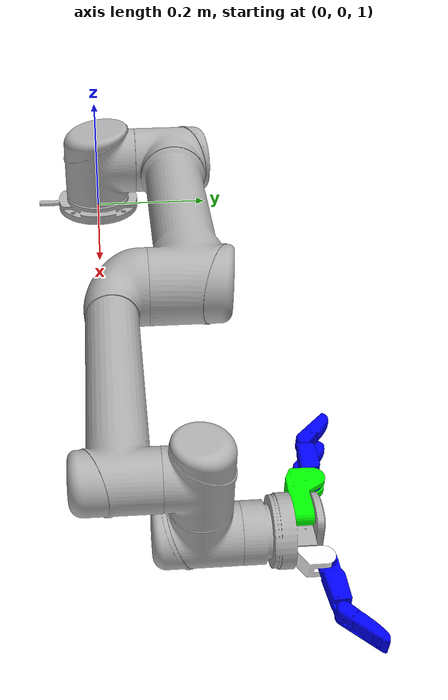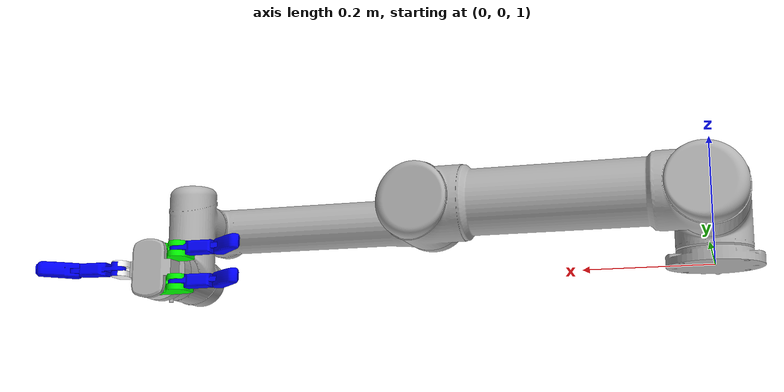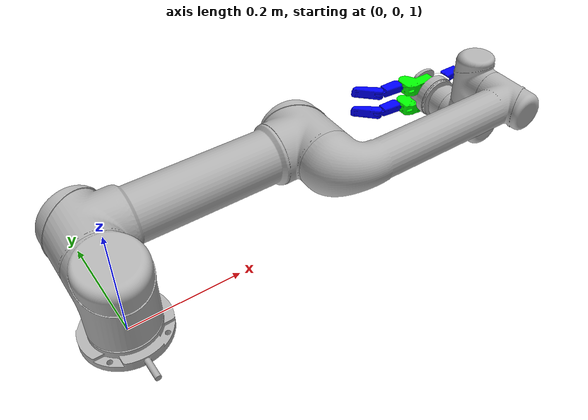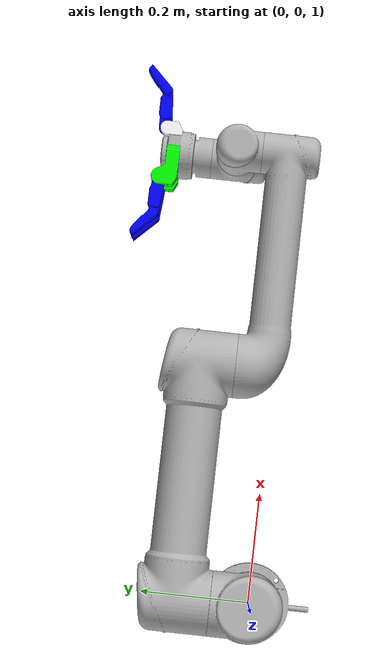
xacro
<?xml version="1.0"?>
<robot xmlns:xacro="http://www.ros.org/wiki/xacro" name="ur5bh" >

  <!-- common stuff -->
  <xacro:include filename="$(find ur_description)/urdf/common.gazebo.xacro" />

  <!-- ur5 -->
  <xacro:include filename="$(find ur_description)/urdf/ur5.urdf.xacro" />

  <!-- barrett hand -->
  <xacro:include filename="$(find bhand_description)/urdf/bh282.urdf.xacro" />

  <!-- arm -->
  <xacro:ur5_robot prefix="" joint_limited="true"/>

  <link name="world" />

  <joint name="world_joint" type="fixed">
    <parent link="world" />
    <child link = "base_link" />
    <origin xyz="0.0 0.0 1.0" rpy="0.0 0.0 0.0" />
  </joint>

  <!-- end effector -->
  <xacro:bhand_macro parent="ee_link" name="bh">
    <origin xyz="0.012 0.0 0.0" rpy="${pi/2.0} ${pi/2.0} ${pi/2.0}"/>
  </xacro:bhand_macro>
</robot>

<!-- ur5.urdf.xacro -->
<robot xmlns:xacro="http://wiki.ros.org/xacro">

  <xacro:include filename="$(find ur_description)/urdf/ur.transmission.xacro" />
  <xacro:include filename="$(find ur_description)/urdf/ur.gazebo.xacro" />

  <xacro:macro name="cylinder_inertial" params="radius length mass *origin">
    <inertial>
      <mass value="${mass}" />
      <xacro:insert_block name="origin" />
      <inertia ixx="${0.0833333 * mass * (3 * radius * radius + length * length)}" ixy="0.0" ixz="0.0"
        iyy="${0.0833333 * mass * (3 * radius * radius + length * length)}" iyz="0.0"
        izz="${0.5 * mass * radius * radius}" />
    </inertial>
  </xacro:macro>

  <xacro:macro name="ur5_robot" params="prefix joint_limited
    shoulder_pan_lower_limit:=${-pi}    shoulder_pan_upper_limit:=${pi}
    shoulder_lift_lower_limit:=${-pi}    shoulder_lift_upper_limit:=${pi}
    elbow_joint_lower_limit:=${-pi}    elbow_joint_upper_limit:=${pi}
    wrist_1_lower_limit:=${-pi}    wrist_1_upper_limit:=${pi}
    wrist_2_lower_limit:=${-pi}    wrist_2_upper_limit:=${pi}
    wrist_3_lower_limit:=${-pi}    wrist_3_upper_limit:=${pi}
    transmission_hw_interface:=hardware_interface/PositionJointInterface
    safety_limits:=false safety_pos_margin:=0.15
    safety_k_position:=20">

    <!-- Inertia parameters -->
    <xacro:property name="base_mass" value="4.0" />  <!-- This mass might be incorrect -->
    <xacro:property name="shoulder_mass" value="3.7000" />
    <xacro:property name="upper_arm_mass" value="8.3930" />
    <xacro:property name="forearm_mass" value="2.2750" />
    <xacro:property name="wrist_1_mass" value="1.2190" />
    <xacro:property name="wrist_2_mass" value="1.2190" />
    <xacro:property name="wrist_3_mass" value="0.1879" />

    <xacro:property name="shoulder_cog" value="0.0 0.00193 -0.02561" />
    <xacro:property name="upper_arm_cog" value="0.0 -0.024201 0.2125" />
    <xacro:property name="forearm_cog" value="0.0 0.0265 0.11993" />
    <xacro:property name="wrist_1_cog" value="0.0 0.110949 0.01634" />
    <xacro:property name="wrist_2_cog" value="0.0 0.0018 0.11099" />
    <xacro:property name="wrist_3_cog" value="0.0 0.001159 0.0" />

    <!-- Kinematic model -->
    <!-- Properties from urcontrol.conf -->
    <xacro:property name="d1" value="0.089159" />
    <xacro:property name="a2" value="-0.42500" />
    <xacro:property name="a3" value="-0.39225" />
    <xacro:property name="d4" value="0.10915" />
    <xacro:property name="d5" value="0.09465" />
    <xacro:property name="d6" value="0.0823" />

    <!-- Arbitrary offsets for shoulder/elbow joints -->
    <xacro:property name="shoulder_offset" value="0.13585" />  <!-- measured from model -->
    <xacro:property name="elbow_offset" value="-0.1197" /> <!-- measured from model -->

    <!-- link lengths used in model -->
    <xacro:property name="shoulder_height" value="${d1}" />
    <xacro:property name="upper_arm_length" value="${-a2}" />
    <xacro:property name="forearm_length" value="${-a3}" />
    <xacro:property name="wrist_1_length" value="${d4 - elbow_offset - shoulder_offset}" />
    <xacro:property name="wrist_2_length" value="${d5}" />
    <xacro:property name="wrist_3_length" value="${d6}" />
    <!--property name="shoulder_height" value="0.089159" /-->
    <!--property name="shoulder_offset" value="0.13585" /-->  <!-- shoulder_offset - elbow_offset + wrist_1_length = 0.10915 -->
    <!--property name="upper_arm_length" value="0.42500" /-->
    <!--property name="elbow_offset" value="0.1197" /-->       <!-- CAD measured -->
    <!--property name="forearm_length" value="0.39225" /-->
    <!--property name="wrist_1_length" value="0.093" /-->     <!-- CAD measured -->
    <!--property name="wrist_2_length" value="0.09465" /-->   <!-- In CAD this distance is 0.930, but in the spec it is 0.09465 -->
    <!--property name="wrist_3_length" value="0.0823" /-->

    <xacro:property name="shoulder_radius" value="0.060" />   <!-- manually measured -->
    <xacro:property name="upper_arm_radius" value="0.054" />  <!-- manually measured -->
    <xacro:property name="elbow_radius" value="0.060" />      <!-- manually measured -->
    <xacro:property name="forearm_radius" value="0.040" />    <!-- manually measured -->
    <xacro:property name="wrist_radius" value="0.045" />      <!-- manually measured -->

    <link name="${prefix}base_link" >
      <visual>
        <geometry>
          <mesh filename="package://ur_description/meshes/ur5/visual/base.dae" />
        </geometry>
        <material name="LightGrey">
          <color rgba="0.7 0.7 0.7 1.0"/>
        </material>
      </visual>
      <collision>
        <geometry>
          <mesh filename="package://ur_description/meshes/ur5/collision/base.stl" />
        </geometry>
      </collision>
      <xacro:cylinder_inertial radius="0.06" length="0.05" mass="${base_mass}">
        <origin xyz="0.0 0.0 0.0" rpy="0 0 0" />
      </xacro:cylinder_inertial>
    </link>

    <joint name="${prefix}shoulder_pan_joint" type="revolute">
      <parent link="${prefix}base_link" />
      <child link = "${prefix}shoulder_link" />
      <origin xyz="0.0 0.0 ${shoulder_height}" rpy="0.0 0.0 0.0" />
      <axis xyz="0 0 1" />
      <xacro:unless value="${joint_limited}">
        <limit lower="${-2.0 * pi}" upper="${2.0 * pi}" effort="150.0" velocity="3.15"/>
        <xacro:if value="${safety_limits}">
          <safety_controller soft_lower_limit="${-2.0 * pi + safety_pos_margin}" soft_upper_limit="${2.0 * pi - safety_pos_margin}" k_position="${safety_k_position}" k_velocity="0.0"/>
        </xacro:if>
      </xacro:unless>
      <xacro:if value="${joint_limited}">
        <limit lower="${shoulder_pan_lower_limit}" upper="${shoulder_pan_upper_limit}" effort="150.0" velocity="3.15"/>
        <xacro:if value="${safety_limits}">
          <safety_controller soft_lower_limit="${shoulder_pan_lower_limit + safety_pos_margin}" soft_upper_limit="${shoulder_pan_upper_limit - safety_pos_margin}" k_position="${safety_k_position}" k_velocity="0.0"/>
        </xacro:if>
      </xacro:if>
    </joint>

    <link name="${prefix}shoulder_link">
      <visual>
        <geometry>
          <mesh filename="package://ur_description/meshes/ur5/visual/shoulder.dae" />
        </geometry>
        <material name="LightGrey">
          <color rgba="0.7 0.7 0.7 1.0"/>
        </material>
      </visual>
      <collision>
        <geometry>
          <mesh filename="package://ur_description/meshes/ur5/collision/shoulder.stl" />
        </geometry>
      </collision>
      <xacro:cylinder_inertial radius="0.06" length="0.15" mass="${shoulder_mass}">
        <origin xyz="0.0 0.0 0.0" rpy="0 0 0" />
      </xacro:cylinder_inertial>
    </link>

    <joint name="${prefix}shoulder_lift_joint" type="revolute">
      <parent link="${prefix}shoulder_link" />
      <child link = "${prefix}upper_arm_link" />
      <origin xyz="0.0 ${shoulder_offset} 0.0" rpy="0.0 ${pi / 2.0} 0.0" />
      <axis xyz="0 1 0" />
      <xacro:unless value="${joint_limited}">
        <limit lower="${-2.0 * pi}" upper="${2.0 * pi}" effort="150.0" velocity="3.15"/>
        <xacro:if value="${safety_limits}">
          <safety_controller soft_lower_limit="${-2.0 * pi + safety_pos_margin}" soft_upper_limit="${2.0 * pi - safety_pos_margin}" k_position="${safety_k_position}" k_velocity="0.0"/>
        </xacro:if>
      </xacro:unless>
      <xacro:if value="${joint_limited}">
        <limit lower="${shoulder_lift_lower_limit}" upper="${shoulder_lift_upper_limit}" effort="150.0" velocity="3.15"/>
        <xacro:if value="${safety_limits}">
          <safety_controller soft_lower_limit="${shoulder_lift_lower_limit + safety_pos_margin}" soft_upper_limit="${shoulder_lift_upper_limit - safety_pos_margin}" k_position="${safety_k_position}" k_velocity="0.0"/>
        </xacro:if>
      </xacro:if>
    </joint>

    <link name="${prefix}upper_arm_link">
      <visual>
        <geometry>
          <mesh filename="package://ur_description/meshes/ur5/visual/upperarm.dae" />
        </geometry>
        <material name="LightGrey">
          <color rgba="0.7 0.7 0.7 1.0"/>
        </material>
      </visual>
      <collision>
        <geometry>
          <mesh filename="package://ur_description/meshes/ur5/collision/upperarm.stl" />
        </geometry>
      </collision>
      <xacro:cylinder_inertial radius="0.06" length="0.56" mass="${upper_arm_mass}">
        <origin xyz="0.0 0.0 0.28" rpy="0 0 0" />
      </xacro:cylinder_inertial>
    </link>

    <joint name="${prefix}elbow_joint" type="revolute">
      <parent link="${prefix}upper_arm_link" />
      <child link = "${prefix}forearm_link" />
      <origin xyz="0.0 ${elbow_offset} ${upper_arm_length}" rpy="0.0 0.0 0.0" />
      <axis xyz="0 1 0" />
      <xacro:unless value="${joint_limited}">
        <limit lower="${-pi}" upper="${pi}" effort="150.0" velocity="3.15"/>
        <xacro:if value="${safety_limits}">
          <safety_controller soft_lower_limit="${-2.0 * pi + safety_pos_margin}" soft_upper_limit="${2.0 * pi - safety_pos_margin}" k_position="${safety_k_position}" k_velocity="0.0"/>
        </xacro:if>
      </xacro:unless>
      <xacro:if value="${joint_limited}">
        <limit lower="${elbow_joint_lower_limit}" upper="${elbow_joint_upper_limit}" effort="150.0" velocity="3.15"/>
        <xacro:if value="${safety_limits}">
          <safety_controller soft_lower_limit="${elbow_joint_lower_limit + safety_pos_margin}" soft_upper_limit="${elbow_joint_upper_limit - safety_pos_margin}" k_position="${safety_k_position}" k_velocity="0.0"/>
        </xacro:if>
      </xacro:if>
    </joint>

    <link name="${prefix}forearm_link">
      <visual>
        <geometry>
          <mesh filename="package://ur_description/meshes/ur5/visual/forearm.dae" />
        </geometry>
        <material name="LightGrey">
          <color rgba="0.7 0.7 0.7 1.0"/>
        </material>
      </visual>
      <collision>
        <geometry>
          <mesh filename="package://ur_description/meshes/ur5/collision/forearm.stl" />
        </geometry>
      </collision>
      <xacro:cylinder_inertial radius="0.06" length="${-a3}" mass="${forearm_mass}">
        <origin xyz="0.0 0.0 ${-a3/2}" rpy="0 0 0" />
      </xacro:cylinder_inertial>
    </link>

    <joint name="${prefix}wrist_1_joint" type="revolute">
      <parent link="${prefix}forearm_link" />
      <child link = "${prefix}wrist_1_link" />
      <origin xyz="0.0 0.0 ${forearm_length}" rpy="0.0 ${pi / 2.0} 0.0" />
      <axis xyz="0 1 0" />
      <xacro:unless value="${joint_limited}">
        <limit lower="${-2.0 * pi}" upper="${2.0 * pi}" effort="28.0" velocity="3.2"/>
        <xacro:if value="${safety_limits}">
          <safety_controller soft_lower_limit="${-2.0 * pi + safety_pos_margin}" soft_upper_limit="${2.0 * pi - safety_pos_margin}" k_position="${safety_k_position}" k_velocity="0.0"/>
        </xacro:if>
      </xacro:unless>
      <xacro:if value="${joint_limited}">
        <limit lower="${wrist_1_lower_limit}" upper="${wrist_1_upper_limit}" effort="28.0" velocity="3.2"/>
        <xacro:if value="${safety_limits}">
          <safety_controller soft_lower_limit="${wrist_1_lower_limit + safety_pos_margin}" soft_upper_limit="${wrist_1_upper_limit - safety_pos_margin}" k_position="${safety_k_position}" k_velocity="0.0"/>
        </xacro:if>
      </xacro:if>
    </joint>

    <link name="${prefix}wrist_1_link">
      <visual>
        <geometry>
          <mesh filename="package://ur_description/meshes/ur5/visual/wrist1.dae" />
        </geometry>
        <material name="LightGrey">
          <color rgba="0.7 0.7 0.7 1.0"/>
        </material>
      </visual>
      <collision>
        <geometry>
          <mesh filename="package://ur_description/meshes/ur5/collision/wrist1.stl" />
        </geometry>
      </collision>
      <xacro:cylinder_inertial radius="0.06" length="0.12" mass="${wrist_1_mass}">
        <origin xyz="0.0 ${wrist_1_length} 0.0" rpy="0 0 0" />
      </xacro:cylinder_inertial>
    </link>

    <joint name="${prefix}wrist_2_joint" type="revolute">
      <parent link="${prefix}wrist_1_link" />
      <child link = "${prefix}wrist_2_link" />
      <origin xyz="0.0 ${wrist_1_length} 0.0" rpy="0.0 0.0 0.0" />
      <axis xyz="0 0 1" />
      <xacro:unless value="${joint_limited}">
        <limit lower="${-2.0 * pi}" upper="${2.0 * pi}" effort="28.0" velocity="3.2"/>
        <xacro:if value="${safety_limits}">
          <safety_controller soft_lower_limit="${-2.0 * pi + safety_pos_margin}" soft_upper_limit="${2.0 * pi - safety_pos_margin}" k_position="${safety_k_position}" k_velocity="0.0"/>
        </xacro:if>
      </xacro:unless>
      <xacro:if value="${joint_limited}">
        <limit lower="${wrist_2_lower_limit}" upper="${wrist_2_upper_limit}" effort="28.0" velocity="3.2"/>
        <xacro:if value="${safety_limits}">
          <safety_controller soft_lower_limit="${wrist_2_lower_limit + safety_pos_margin}" soft_upper_limit="${wrist_2_upper_limit - safety_pos_margin}" k_position="${safety_k_position}" k_velocity="0.0"/>
        </xacro:if>
      </xacro:if>
    </joint>

    <link name="${prefix}wrist_2_link">
      <visual>
        <geometry>
          <mesh filename="package://ur_description/meshes/ur5/visual/wrist2.dae" />
        </geometry>
        <material name="LightGrey">
          <color rgba="0.7 0.7 0.7 1.0"/>
        </material>
      </visual>
      <collision>
        <geometry>
          <mesh filename="package://ur_description/meshes/ur5/collision/wrist2.stl" />
        </geometry>
      </collision>
      <xacro:cylinder_inertial radius="0.06" length="0.12" mass="${wrist_2_mass}">
        <origin xyz="0.0 0.0 ${wrist_2_length}" rpy="0 0 0" />
      </xacro:cylinder_inertial>
    </link>

    <joint name="${prefix}wrist_3_joint" type="revolute">
      <parent link="${prefix}wrist_2_link" />
      <child link = "${prefix}wrist_3_link" />
      <origin xyz="0.0 0.0 ${wrist_2_length}" rpy="0.0 0.0 0.0" />
      <axis xyz="0 1 0" />
      <xacro:unless value="${joint_limited}">
        <limit lower="${-2.0 * pi}" upper="${2.0 * pi}" effort="28.0" velocity="3.2"/>
        <xacro:if value="${safety_limits}">
          <safety_controller soft_lower_limit="${-2.0 * pi + safety_pos_margin}" soft_upper_limit="${2.0 * pi - safety_pos_margin}" k_position="${safety_k_position}" k_velocity="0.0"/>
        </xacro:if>
      </xacro:unless>
      <xacro:if value="${joint_limited}">
        <limit lower="${wrist_3_lower_limit}" upper="${wrist_3_upper_limit}" effort="28.0" velocity="3.2"/>
        <xacro:if value="${safety_limits}">
          <safety_controller soft_lower_limit="${wrist_3_lower_limit + safety_pos_margin}" soft_upper_limit="${wrist_3_upper_limit - safety_pos_margin}" k_position="${safety_k_position}" k_velocity="0.0"/>
        </xacro:if>
      </xacro:if>
    </joint>

    <link name="${prefix}wrist_3_link">
      <visual>
        <geometry>
          <mesh filename="package://ur_description/meshes/ur5/visual/wrist3.dae" />
        </geometry>
        <material name="LightGrey">
          <color rgba="0.7 0.7 0.7 1.0"/>
        </material>
      </visual>
      <collision>
        <geometry>
          <mesh filename="package://ur_description/meshes/ur5/collision/wrist3.stl" />
        </geometry>
      </collision>
      <xacro:cylinder_inertial radius="0.0375" length="0.0345" mass="${wrist_3_mass}">
        <origin xyz="0.0 ${wrist_3_length - 0.0345/2} 0.0" rpy="${pi/2} 0 0" />
      </xacro:cylinder_inertial>
    </link>

    <joint name="${prefix}ee_fixed_joint" type="fixed">
      <parent link="${prefix}wrist_3_link" />
      <child link = "${prefix}ee_link" />
      <origin xyz="0.0 ${wrist_3_length} 0.0" rpy="0.0 0.0 ${pi/2.0}" />
    </joint>

    <link name="${prefix}ee_link">
      <collision>
        <geometry>
          <box size="0.01 0.01 0.01"/>
        </geometry>
        <origin rpy="0 0 0" xyz="-0.01 0 0"/>
      </collision>
    </link>

    <xacro:ur_arm_transmission prefix="${prefix}" hw_interface="${transmission_hw_interface}" />
    <xacro:ur_arm_gazebo prefix="${prefix}" />

    <!-- ROS base_link to UR 'Base' Coordinates transform -->
    <link name="${prefix}base"/>
    <joint name="${prefix}base_link-base_fixed_joint" type="fixed">
      <!-- NOTE: this rotation is only needed as long as base_link itself is
                 not corrected wrt the real robot (ie: rotated over 180
                 degrees)
      -->
      <origin xyz="0 0 0" rpy="0 0 ${-pi}"/>
      <parent link="${prefix}base_link"/>
      <child link="${prefix}base"/>
    </joint>

    <!-- Frame coincident with all-zeros TCP on UR controller -->
    <link name="${prefix}tool0"/>
    <joint name="${prefix}wrist_3_link-tool0_fixed_joint" type="fixed">
      <origin xyz="0 ${wrist_3_length} 0" rpy="${pi/-2.0} 0 0"/>
      <parent link="${prefix}wrist_3_link"/>
      <child link="${prefix}tool0"/>
    </joint>

  </xacro:macro>
</robot>

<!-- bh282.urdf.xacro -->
<robot xmlns:xacro="http://www.ros.org/wiki/xacro">

	<!-- Import all Gazebo-customization elements, including Gazebo colors -->
	<xacro:include filename="$(find bhand_description)/urdf/bh282.gazebo" />

	<!-- Constants for robot dimensions -->
	<xacro:property name="PI" value="3.1415926535897931"/>
	<xacro:property name="PI_2" value="1.570796327"/>
	<xacro:property name="joint_damping" value="100.0" />
	<xacro:property name="joint_friction" value="1.0" />
	<xacro:property name="joint_effort_limit" value="30.0" />
	<xacro:property name="joint_velocity_limit" value="2.0" />
	<xacro:property name="mechanical_reduction" value="1.0" />

	<xacro:macro name="bhand_macro" params="parent name *origin
	transmission_hw_interface:=hardware_interface/PositionJointInterface">

		<joint name="${name}_base_joint" type="fixed">
			<origin xyz="0.0 0.0 0.0" rpy="0.0 1.57079632679 0"/>
			<insert_block name="origin"/>
			<parent link="${parent}"/>
			<child link="${name}_base_link"/>
		</joint>

		<!-- HAND BASE_LINK (RED) -->
		<link name="${name}_base_link">
			<inertial>
			  <mass value="1.0" />
			  <origin xyz="0 0 0" />
			  <inertia  ixx="1.0" ixy="0.0"  ixz="0.0"  iyy="1.0"  iyz="0.0"  izz="1.0" />
			</inertial>
			<visual>
			   <origin xyz="0 0 0" rpy="0 0 0" />
			   <geometry>
				  <mesh filename="package://bhand_description/meshes/palm_282.dae"/>
			   </geometry>
			   <material name="Grey">
			   	<color rgba="0.7 0.7 0.7 1.0"/>
			   </material>
			</visual>
			<collision>
			   <origin xyz="0 0 0" rpy="0 0 0 " />
			   <geometry>
				  <mesh filename="package://bhand_description/meshes/palm_282.dae"/>
			   </geometry>
			   <contact_coefficients kd="1.0" kp="1000.0" mu="0"/>
			</collision>
		</link>

		<!-- joint between BH_finger_32_link and BH_finger_33_link -->
		<joint name="${name}_j33_joint" type="revolute">
			<parent link="${name}_finger_32_link"/>
			<child link="${name}_finger_33_link"/>
			<origin xyz="-0.069936 0.003 0" rpy="0 0 0" />
			<axis xyz="0 0 -1"/>
			<limit effort="${joint_effort_limit}" lower="0.0" upper="0.84" velocity="${joint_velocity_limit}"/>
			<dynamics damping="${joint_damping}" friction="${joint_friction}"/>
		</joint>

		<link name="${name}_finger_11_link">
			<inertial>
			  <mass value="0.1"/>
			  <origin xyz="-0.046 0 0" rpy="0 0 0"/>
			  <inertia ixx="0.01" ixy="0" ixz="0" iyy="0.01" iyz="0" izz="0.01" />
			</inertial>
			<visual>
			  <origin xyz="0 0 0" rpy="0 0 0" />
			  <geometry>
				 <mesh filename="package://bhand_description/meshes/knuckle.dae" />
			  </geometry>
			  <material name="Green" >
			  	<color rgba="0.0 1.0 0.0 1.0"/>
			  </material>
			</visual>
			<collision>
			  <origin xyz="0 0 0" rpy="0 0 0" />
			  <geometry>
				<mesh filename="package://bhand_description/meshes/knuckle.dae" />
			  </geometry>
			</collision>
		</link>

		<!-- joint between BH_palm_link and BH_finger_11_link -->
		<joint name="${name}_j11_joint" type="revolute">
			<parent link="${name}_base_link"/>
			<child link="${name}_finger_11_link"/>
			<origin xyz="-0.025 0 0.0252" rpy="0 0 1.5708" />
			<axis xyz="0 0 -1"/>
			<limit effort="${joint_effort_limit}" lower="0" upper="3.1416" velocity="${joint_velocity_limit}"/>
			<dynamics damping="${joint_damping}" friction="${joint_friction}"/>
		</joint>

		<link name="${name}_finger_12_link">
			 <inertial>
				<mass value="0.1"/>
				<origin xyz="0 0 0" rpy="0 0 0"/>
				<inertia ixx="0.01" ixy="0" ixz="0" iyy="0.01" iyz="0" izz="0.01" />
			 </inertial>
			 <visual>
				<origin xyz="0 0 0" rpy="0 0 0" />
				<geometry>
				  <mesh filename="package://bhand_description/meshes/finger.dae" />
				</geometry>
				<material name="Blue" >
					<color rgba="0.0 0.0 1.0 1.0"/>
				</material>
			 </visual>
			 <collision>
				<origin xyz="0 0 0" rpy="0 0 0" />
				<geometry>
				  <mesh filename="package://bhand_description/meshes/finger.dae" />
				</geometry>
				<contact_coefficients kd="1.0" kp="1000.0" mu="0"/>
			 </collision>
		</link>

		<!-- joint between BH_finger_11_link and BH_finger_12_link -->
		<joint name="${name}_j12_joint" type="revolute">
			<parent link="${name}_finger_11_link"/>
			<child link="${name}_finger_12_link"/>
			<origin	xyz="-0.05 0 0.0339"
				rpy="1.5708 0 0" />
			<axis xyz="0 0 -1"/>
			<limit effort="${joint_effort_limit}" lower="0.0" upper="2.44" velocity="${joint_velocity_limit}"/>
			<dynamics damping="${joint_damping}" friction="${joint_friction}"/>
		</joint>

		<link name="${name}_finger_13_link">
		 <inertial>
			<mass value="0.1"/>
			<origin xyz="0 0 0" rpy="0 0 0"/>
			<inertia ixx="0.01" ixy="0" ixz="0" iyy="0.01" iyz="0" izz="0.01" />
		 </inertial>
		 <visual>
			<origin xyz="0 0 0" rpy="0 0 0" />
			<geometry>
			  <mesh filename="package://bhand_description/meshes/finger_tip.dae" />
			</geometry>
			<material name="Blue" />
		 </visual>
		 <collision>
			<origin xyz="0 0 0" rpy="0 0 0" />
			<geometry>
			  <mesh filename="package://bhand_description/meshes/finger_tip.dae" />
			</geometry>
			<contact_coefficients kd="1.0" kp="1000.0" mu="0"/>
		 </collision>
		</link>

		<!-- joint between BH_finger_12_link and BH_finger_13_link -->
		<joint name="${name}_j13_joint" type="revolute">
			<parent link="${name}_finger_12_link"/>
			<child link="${name}_finger_13_link"/>
			<origin xyz="-0.069936 0.003 0" rpy="0 0 0" />
			<axis xyz="0 0 -1"/>
			<limit effort="${joint_effort_limit}" lower="0.0" upper="0.84" velocity="${joint_velocity_limit}"/>
			<dynamics damping="${joint_damping}" friction="${joint_friction}"/>
		</joint>

		<!-- finger 2 -->
		<link name="${name}_finger_21_link">
			<inertial>
			  <mass value="0.1"/>
			  <origin xyz="-0.046 0 0" rpy="0 0 0"/>
			  <inertia ixx="0.01" ixy="0" ixz="0" iyy="0.01" iyz="0" izz="0.01" />
			</inertial>
			<visual>
			  <origin xyz="0 0 0" rpy="0 0 0" />
			  <geometry>
				 <mesh filename="package://bhand_description/meshes/knuckle.dae" />
			  </geometry>
			  <material name="Green" />
			</visual>
			<collision>
			  <origin xyz="0 0 0" rpy="0 0 0" />
			  <geometry>
				<mesh filename="package://bhand_description/meshes/knuckle.dae" />
			  </geometry>
			</collision>
		</link>

		<!-- joint between BH_palm_link and BH_finger_21_link -->
		<joint name="${name}_j21_joint" type="revolute">
			<parent link="${name}_base_link"/>
			<child link="${name}_finger_21_link"/>
			<origin xyz="0.025 0 0.0252" rpy="0 0 1.5708" />
			<axis xyz="0 0 1"/>
			<limit effort="${joint_effort_limit}" lower="0" upper="3.1416" velocity="${joint_velocity_limit}"/>
			<dynamics damping="${joint_damping}" friction="${joint_friction}"/>
		</joint>
		<link name="${name}_finger_22_link">
			 <inertial>
				<mass value="0.1"/>
				<origin xyz="0 0 0" rpy="0 0 0"/>
				<inertia ixx="0.01" ixy="0" ixz="0" iyy="0.01" iyz="0" izz="0.01" />
			 </inertial>
			 <visual>
				<origin xyz="0 0 0" rpy="0 0 0" />
				<geometry>
				  <mesh filename="package://bhand_description/meshes/finger.dae" />
				</geometry>
				<material name="Blue" />
			 </visual>
			 <collision>
				<origin xyz="0 0 0" rpy="0 0 0" />
				<geometry>
				  <mesh filename="package://bhand_description/meshes/finger.dae" />
				</geometry>
				<contact_coefficients kd="1.0" kp="1000.0" mu="0"/>
			 </collision>
		</link>
		<!-- joint between BH_finger_21_link and BH_finger_22_link -->
		<joint name="${name}_j22_joint" type="revolute">
			<parent link="${name}_finger_21_link"/>
			<child link="${name}_finger_22_link"/>
			<origin	xyz="-0.05 0 0.0339"
				rpy="1.5708 -8.8281E-17 0" />
			<axis xyz="0 0 -1"/>
			<limit effort="${joint_effort_limit}" lower="0.0" upper="2.44" velocity="${joint_velocity_limit}"/>
			<dynamics damping="${joint_damping}" friction="${joint_friction}"/>
		</joint>

		<link name="${name}_finger_23_link">
		 <inertial>
			<mass value="0.1"/>
			<origin xyz="0 0 0" rpy="0 0 0"/>
			<inertia ixx="0.01" ixy="0" ixz="0" iyy="0.01" iyz="0" izz="0.01" />
		 </inertial>
		 <visual>
			<origin xyz="0 0 0" rpy="0 0 0" />
			<geometry>
			  <mesh filename="package://bhand_description/meshes/finger_tip.dae" />
			</geometry>
			<material name="Blue" />
		 </visual>
		 <collision>
			<origin xyz="0 0 0" rpy="0 0 0" />
			<geometry>
			  <mesh filename="package://bhand_description/meshes/finger_tip.dae" />
			</geometry>
			<contact_coefficients kd="1.0" kp="1000.0" mu="0"/>
		 </collision>
		</link>
		<!-- joint between BH_finger_22_link and BH_finger_23_link -->
		<joint name="${name}_j23_joint" type="revolute">
			<parent link="${name}_finger_22_link"/>
			<child link="${name}_finger_23_link"/>
			<origin xyz="-0.069936 0.003 0" rpy="0 0 0" />
			<axis xyz="0 0 -1"/>
			<limit effort="${joint_effort_limit}" lower="0.0" upper="0.84" velocity="${joint_velocity_limit}"/>
			<dynamics damping="${joint_damping}" friction="${joint_friction}"/>
		</joint>

		<link name="${name}_finger_31_link">
		 <inertial>
		   <mass value="0.1"/>
		   <origin xyz="-0.046 0 0" rpy="0 0 0"/>
		   <inertia ixx="0.01" ixy="0" ixz="0" iyy="0.01" iyz="0" izz="0.01" />
		 </inertial>
		 <visual>
		   <origin xyz="-0.04 0 0" rpy="0 0 0" />
		   <geometry>
			  <mesh filename="package://bhand_description/meshes/knuckle_fixed.dae" />
		   </geometry>
			<material name="Black">
				<color rgba="1.0 1.0 1.0 1.0"/>
			</material>
		 </visual>
		 <collision>
		   <origin xyz="-0.04 0 0" rpy="0 0 0" />
		   <geometry>
			  <mesh filename="package://bhand_description/meshes/knuckle_fixed.dae"/>
		   </geometry>
		   <contact_coefficients kd="1.0" kp="1000.0" mu="0"/>
		  </collision>
		</link>
		<joint name="${name}_j31_joint" type="fixed">
			<parent link="${name}_base_link"/>
			<child link="${name}_finger_31_link"/>
			<origin xyz="0 0 0.0252" rpy="0 0 -${PI_2}"/>
		</joint>
		<link name="${name}_finger_32_link">
			 <inertial>
				<mass value="0.1"/>
				<origin xyz="0 0 0" rpy="0 0 0"/>
				<inertia ixx="0.01" ixy="0" ixz="0" iyy="0.01" iyz="0" izz="0.01" />
			 </inertial>
			 <visual>
				<origin xyz="0 0 0" rpy="0 0 0" />
				<geometry>
				  <mesh filename="package://bhand_description/meshes/finger.dae" />
				</geometry>
				<material name="Blue" />
			 </visual>
			 <collision>
				<origin xyz="0 0 0" rpy="0 0 0" />
				<geometry>
				  <mesh filename="package://bhand_description/meshes/finger.dae" />
				</geometry>
				<contact_coefficients kd="1.0" kp="1000.0" mu="0"/>
			 </collision>
		</link>
		<joint name="${name}_j32_joint" type="revolute">
			<parent link="${name}_finger_31_link"/>
			<child link="${name}_finger_32_link"/>
			<origin	xyz="-0.05 0 0.0339"
				rpy="1.5708 -8.8281E-17 0" />
			<axis xyz="0 0 -1"/>
			<limit effort="${joint_effort_limit}" lower="0.0" upper="2.44" velocity="${joint_velocity_limit}"/>
			<dynamics damping="${joint_damping}" friction="${joint_friction}"/>
		</joint>
		<link name="${name}_finger_33_link">
		 <inertial>
			<mass value="0.1"/>
			<origin xyz="0 0 0" rpy="0 0 0"/>
			<inertia ixx="0.01" ixy="0" ixz="0" iyy="0.01" iyz="0" izz="0.01" />
		 </inertial>
		 <visual>
			<origin xyz="0 0 0" rpy="0 0 0" />
			<geometry>
			  <mesh filename="package://bhand_description/meshes/finger_tip.dae" />
			</geometry>
			<material name="Blue" />
		 </visual>
		 <collision>
			<origin xyz="0 0 0" rpy="0 0 0" />
			<geometry>
			  <mesh filename="package://bhand_description/meshes/finger_tip.dae" />
			</geometry>
			<contact_coefficients kd="1.0" kp="1000.0" mu="0"/>
		 </collision>
		</link>

		<transmission name="${name}_j11_transmission">
			<type>transmission_interface/SimpleTransmission</type>
			<joint name="${name}_j11_joint">
				<hardwareInterface>${transmission_hw_interface}</hardwareInterface>
			</joint>
			<actuator name="${name}_j11">
				<hardwareInterface>${transmission_hw_interface}</hardwareInterface>
			  <mechanicalReduction>1</mechanicalReduction>
			  <motorTorqueConstant>1</motorTorqueConstant>
			</actuator>
		</transmission>

		<transmission name="${name}_j12_transmission">
			<type>transmission_interface/SimpleTransmission</type>
			<joint name="${name}_j12_joint">
				<hardwareInterface>${transmission_hw_interface}</hardwareInterface>
			</joint>
			<actuator name="${name}_j12">
			  <hardwareInterface>${transmission_hw_interface}</hardwareInterface>
			  <mechanicalReduction>1</mechanicalReduction>
			  <motorTorqueConstant>1</motorTorqueConstant>
			</actuator>
		</transmission>

		<transmission name="${name}_j13_transmission">
			<type>transmission_interface/SimpleTransmission</type>
			<joint name="${name}_j13_joint">
				<hardwareInterface>${transmission_hw_interface}</hardwareInterface>
			</joint>
			<actuator name="${name}_j13">
			  <hardwareInterface>${transmission_hw_interface}</hardwareInterface>
			  <mechanicalReduction>1</mechanicalReduction>
			  <motorTorqueConstant>1</motorTorqueConstant>
			</actuator>
		</transmission>

		<transmission name="${name}_j33_transmission">
			<type>transmission_interface/SimpleTransmission</type>
			<joint name="${name}_j33_joint">
				<hardwareInterface>${transmission_hw_interface}</hardwareInterface>
			</joint>
			<actuator name="${name}_j33">
			  <hardwareInterface>${transmission_hw_interface}</hardwareInterface>
			  <mechanicalReduction>1</mechanicalReduction>
			  <motorTorqueConstant>1</motorTorqueConstant>
			</actuator>
		</transmission>

		<transmission name="${name}_j32_transmission">
			<type>transmission_interface/SimpleTransmission</type>
			<joint name="${name}_j32_joint">
				<hardwareInterface>${transmission_hw_interface}</hardwareInterface>
			</joint>
			<actuator name="${name}_j32">
			  <hardwareInterface>${transmission_hw_interface}</hardwareInterface>
			  <mechanicalReduction>1</mechanicalReduction>
			  <motorTorqueConstant>1</motorTorqueConstant>
			</actuator>
		</transmission>

		<transmission name="${name}_j21_transmission">
			<type>transmission_interface/SimpleTransmission</type>
			<joint name="${name}_j21_joint">
				<hardwareInterface>${transmission_hw_interface}</hardwareInterface>
			</joint>
			<actuator name="${name}_j21">
			  <hardwareInterface>${transmission_hw_interface}</hardwareInterface>
			  <mechanicalReduction>1</mechanicalReduction>
			  <motorTorqueConstant>1</motorTorqueConstant>
			</actuator>
		</transmission>
		<transmission name="${name}_j22_transmission">
			<type>transmission_interface/SimpleTransmission</type>
			<joint name="${name}_j22_joint">
				<hardwareInterface>${transmission_hw_interface}</hardwareInterface>
			</joint>
			<actuator name="${name}_j22">
			  <hardwareInterface>${transmission_hw_interface}</hardwareInterface>
			  <mechanicalReduction>1</mechanicalReduction>
			  <motorTorqueConstant>1</motorTorqueConstant>
			</actuator>
		</transmission>

		<transmission name="${name}_j23_transmission">
			<type>transmission_interface/SimpleTransmission</type>
			<joint name="${name}_j23_joint">
				<hardwareInterface>${transmission_hw_interface}</hardwareInterface>
			</joint>
			<actuator name="${name}_j23">
			  <hardwareInterface>${transmission_hw_interface}</hardwareInterface>
			  <mechanicalReduction>1</mechanicalReduction>
			  <motorTorqueConstant>1</motorTorqueConstant>
			</actuator>
		</transmission>

		<xacro:bh_gazebo name="${name}"/>

	</xacro:macro>

</robot>
